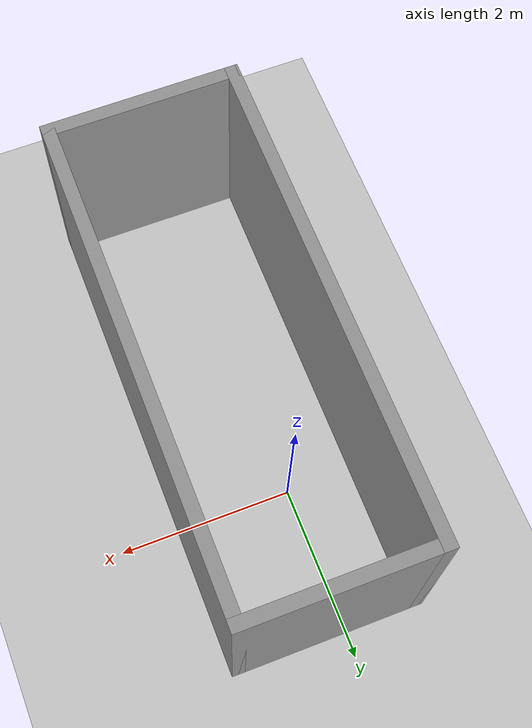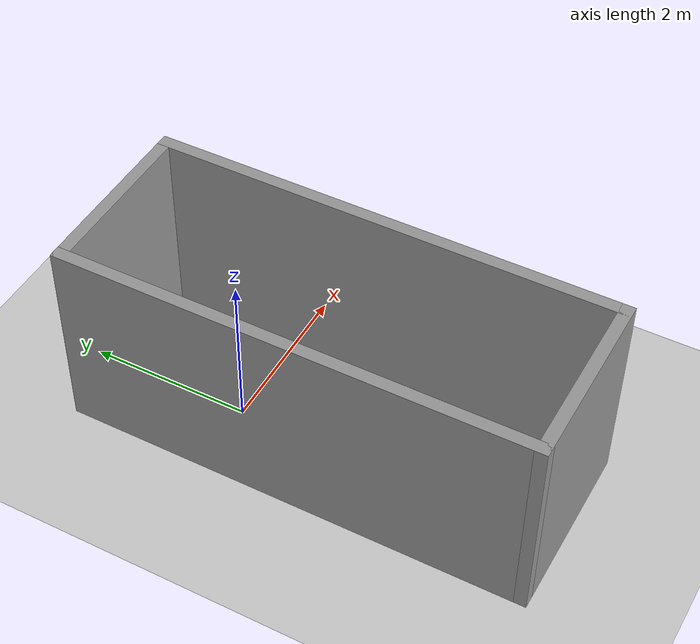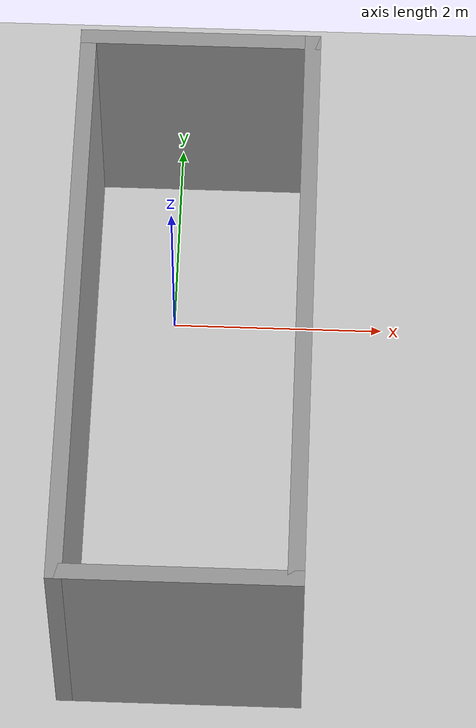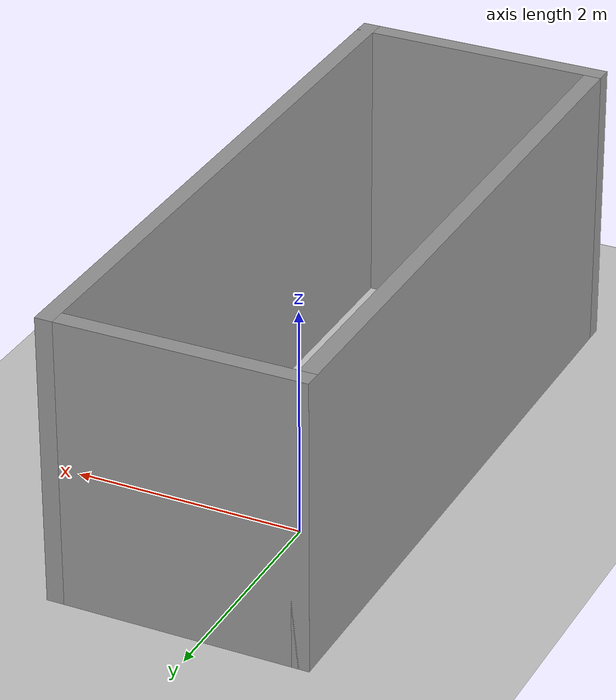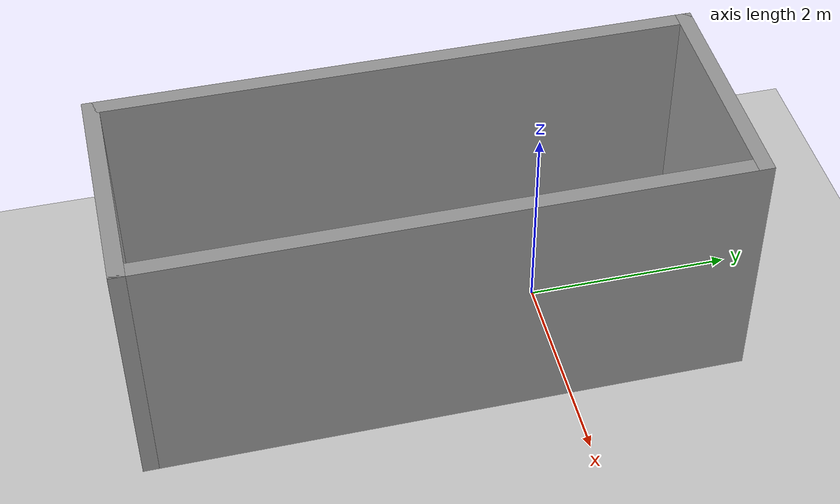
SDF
<sdf version="1.7">
 <world name="default">
  <model name="ground_plane">
   <static>1</static>
   <link name="link">
    <collision name="collision">
     <geometry><plane><normal>0 0 1</normal><size>100 100</size></plane></geometry>
     <surface>
      <contact><collide_bitmask>65535</collide_bitmask></contact>
      <friction><ode><mu>100</mu><mu2>50</mu2></ode></friction>
     </surface>
    </collision>
    <visual name="visual">
     <cast_shadows>0</cast_shadows>
     <geometry><plane><normal>0 0 1</normal><size>100 100</size></plane></geometry>
     <material>
      <script><uri>file://media/materials/scripts/gazebo.material</uri><name>Gazebo/Grey</name></script>
     </material>
    </visual>
   </link>
  </model>
  <gravity>0 0 -9.8</gravity>
  <magnetic_field>6e-06 2.3e-05 -4.2e-05</magnetic_field>
  <atmosphere type="adiabatic"/>
  <physics type="ode">
   <max_step_size>0.001</max_step_size>
   <real_time_factor>1</real_time_factor>
   <real_time_update_rate>1000</real_time_update_rate>
  </physics>
  <scene><ambient>0.4 0.4 0.4 1</ambient><background>0.7 0.7 0.7 1</background><shadows>1</shadows></scene>
  <audio><device>default</device></audio>
  <spherical_coordinates>
   <surface_model>EARTH_WGS84</surface_model>
   <latitude_deg>0</latitude_deg>
   <longitude_deg>0</longitude_deg>
   <elevation>0</elevation>
   <heading_deg>0</heading_deg>
  </spherical_coordinates>
  <model name="room">
   <pose>0.210684 -1.15677 0 0 -0 0</pose>
   <link name="Wall_1">
    <collision name="Wall_1_Collision">
     <geometry><box><size>5.75 0.15 2.5</size></box></geometry>
     <pose>0 0 1.25 0 -0 0</pose>
    </collision>
    <visual name="Wall_1_Visual">
     <pose>0 0 1.25 0 -0 0</pose>
     <geometry><box><size>5.75 0.15 2.5</size></box></geometry>
     <material>
      <script><uri>file://media/materials/scripts/gazebo.material</uri><name>Gazebo/Grey</name></script>
      <ambient>1 1 1 1</ambient>
     </material>
     <meta><layer>0</layer></meta>
    </visual>
    <pose>-1.05 0 0 0 -0 1.5708</pose>
   </link>
   <link name="Wall_2">
    <collision name="Wall_2_Collision">
     <geometry><box><size>2.25 0.15 2.5</size></box></geometry>
     <pose>0 0 1.25 0 -0 0</pose>
    </collision>
    <visual name="Wall_2_Visual">
     <pose>0 0 1.25 0 -0 0</pose>
     <geometry><box><size>2.25 0.15 2.5</size></box></geometry>
     <material>
      <script><uri>file://media/materials/scripts/gazebo.material</uri><name>Gazebo/Grey</name></script>
      <ambient>1 1 1 1</ambient>
     </material>
     <meta><layer>0</layer></meta>
    </visual>
    <pose>-0 2.8 0 0 -0 0</pose>
   </link>
   <link name="Wall_5">
    <collision name="Wall_5_Collision">
     <geometry><box><size>5.75 0.15 2.5</size></box></geometry>
     <pose>0 0 1.25 0 -0 0</pose>
    </collision>
    <visual name="Wall_5_Visual">
     <pose>0 0 1.25 0 -0 0</pose>
     <geometry><box><size>5.75 0.15 2.5</size></box></geometry>
     <material>
      <script><uri>file://media/materials/scripts/gazebo.material</uri><name>Gazebo/Grey</name></script>
      <ambient>1 1 1 1</ambient>
     </material>
     <meta><layer>0</layer></meta>
    </visual>
    <pose>1.05 0 0 0 -0 -1.5708</pose>
   </link>
   <link name="Wall_6">
    <collision name="Wall_6_Collision">
     <geometry><box><size>2.25 0.15 2.5</size></box></geometry>
     <pose>0 0 1.25 0 -0 0</pose>
    </collision>
    <visual name="Wall_6_Visual">
     <pose>0 0 1.25 0 -0 0</pose>
     <geometry><box><size>2.25 0.15 2.5</size></box></geometry>
     <material>
      <script><uri>file://media/materials/scripts/gazebo.material</uri><name>Gazebo/Grey</name></script>
      <ambient>1 1 1 1</ambient>
     </material>
     <meta><layer>0</layer></meta>
    </visual>
    <pose>-0 -2.8 0 0 -0 3.14159</pose>
   </link>
   <static>1</static>
  </model>
  <light name="sun" type="directional">
   <pose>0.634705 -1.55761 10 0 -0 0</pose>
   <diffuse>0.8 0.8 0.8 1</diffuse>
   <specular>0.2 0.2 0.2 1</specular>
   <attenuation>
    <range>1000</range>
    <constant>0.9</constant>
    <linear>0.01</linear>
    <quadratic>0.001</quadratic>
   </attenuation>
   <direction>-0.5 0.1 -0.9</direction>
  </light>
 </world>
</sdf>
